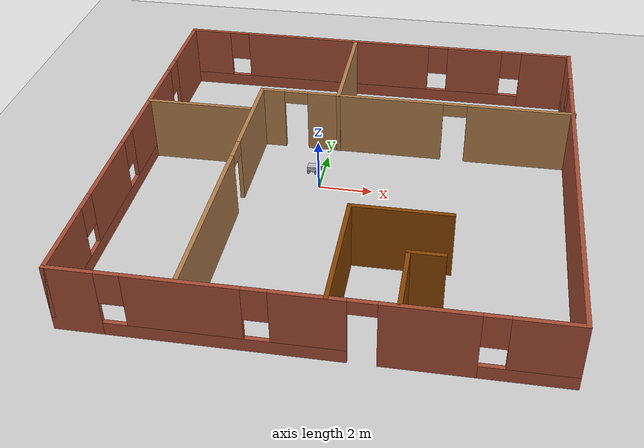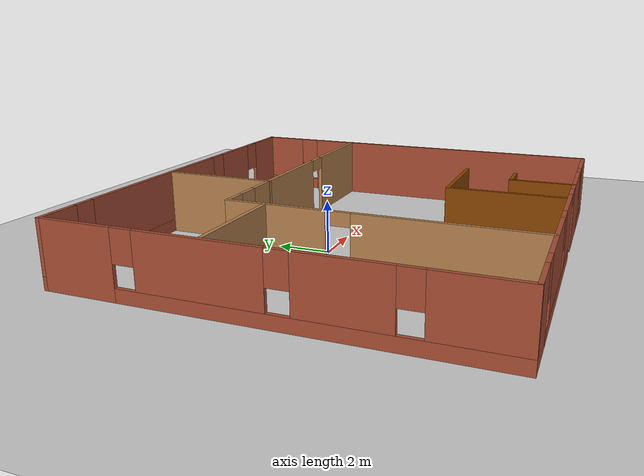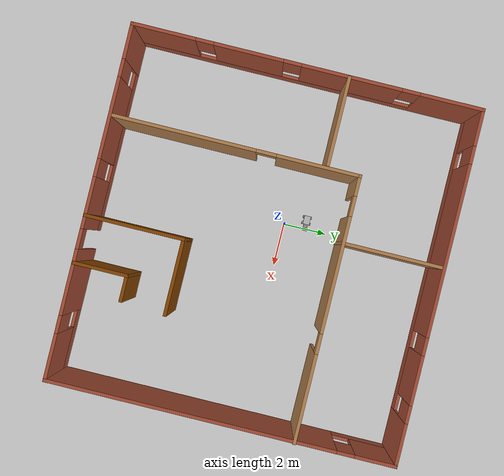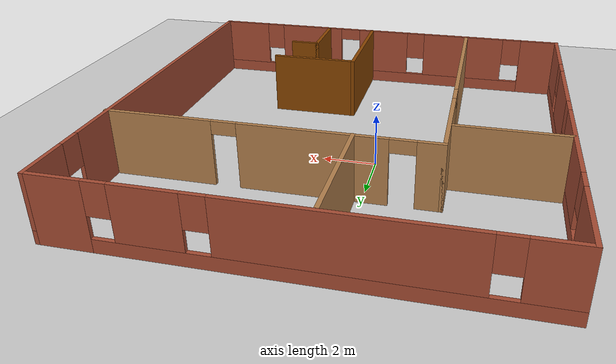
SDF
<sdf version="1.6">
 <world name="default">
  <model name="ground_plane">
   <static>1</static>
   <link name="link">
    <collision name="collision">
     <geometry><plane><normal>0 0 1</normal><size>100 100</size></plane></geometry>
     <surface><friction><ode><mu>100</mu><mu2>50</mu2></ode></friction></surface>
    </collision>
    <visual name="visual">
     <cast_shadows>0</cast_shadows>
     <geometry><plane><normal>0 0 1</normal><size>100 100</size></plane></geometry>
     <material>
      <script><uri>file://media/materials/scripts/gazebo.material</uri><name>Gazebo/Grey</name></script>
     </material>
    </visual>
   </link>
  </model>
  <model name="buillding">
   <pose>1.22192 -0.688168 0 0 -0 0</pose>
   <link name="Wall_11">
    <pose>2.02278 3.31581 0 0 -0 0</pose>
    <visual name="Wall_11_Visual_0">
     <pose>-5.5191 0 1.25 0 -0 0</pose>
     <geometry><box><size>0.961793 0.15 2.5</size></box></geometry>
     <material>
      <script><uri>file://media/materials/scripts/gazebo.material</uri><name>Gazebo/Wood</name></script>
      <ambient>1 1 1 1</ambient>
     </material>
     <meta><layer>0</layer></meta>
    </visual>
    <collision name="Wall_11_Collision_0">
     <geometry><box><size>0.961793 0.15 2.5</size></box></geometry>
     <pose>-5.5191 0 1.25 0 -0 0</pose>
    </collision>
    <visual name="Wall_11_Visual_1">
     <pose>-1.52765 0 1.25 0 -0 0</pose>
     <geometry><box><size>5.2211 0.15 2.5</size></box></geometry>
     <material>
      <script><uri>file://media/materials/scripts/gazebo.material</uri><name>Gazebo/Wood</name></script>
      <ambient>1 1 1 1</ambient>
     </material>
     <meta><layer>0</layer></meta>
    </visual>
    <collision name="Wall_11_Collision_1">
     <geometry><box><size>5.2211 0.15 2.5</size></box></geometry>
     <pose>-1.52765 0 1.25 0 -0 0</pose>
    </collision>
    <visual name="Wall_11_Visual_2">
     <pose>3.99145 0 1.25 0 -0 0</pose>
     <geometry><box><size>4.0171 0.15 2.5</size></box></geometry>
     <material>
      <script><uri>file://media/materials/scripts/gazebo.material</uri><name>Gazebo/Wood</name></script>
      <ambient>1 1 1 1</ambient>
     </material>
     <meta><layer>0</layer></meta>
    </visual>
    <collision name="Wall_11_Collision_2">
     <geometry><box><size>4.0171 0.15 2.5</size></box></geometry>
     <pose>3.99145 0 1.25 0 -0 0</pose>
    </collision>
    <visual name="Wall_11_Visual_3">
     <pose>-4.58821 0 2.25 0 -0 0</pose>
     <geometry><box><size>0.9 0.15 0.5</size></box></geometry>
     <material>
      <script><uri>file://media/materials/scripts/gazebo.material</uri><name>Gazebo/Wood</name></script>
      <ambient>1 1 1 1</ambient>
     </material>
     <meta><layer>0</layer></meta>
    </visual>
    <collision name="Wall_11_Collision_3">
     <geometry><box><size>0.9 0.15 0.5</size></box></geometry>
     <pose>-4.58821 0 2.25 0 -0 0</pose>
    </collision>
    <visual name="Wall_11_Visual_4">
     <pose>1.5329 0 2.25 0 -0 0</pose>
     <geometry><box><size>0.9 0.15 0.5</size></box></geometry>
     <material>
      <script><uri>file://media/materials/scripts/gazebo.material</uri><name>Gazebo/Wood</name></script>
      <ambient>1 1 1 1</ambient>
     </material>
     <meta><layer>0</layer></meta>
    </visual>
    <collision name="Wall_11_Collision_4">
     <geometry><box><size>0.9 0.15 0.5</size></box></geometry>
     <pose>1.5329 0 2.25 0 -0 0</pose>
    </collision>
   </link>
   <link name="Wall_13">
    <collision name="Wall_13_Collision">
     <geometry><box><size>4.5 0.15 2.5</size></box></geometry>
     <pose>0 0 1.25 0 -0 0</pose>
    </collision>
    <visual name="Wall_13_Visual">
     <pose>0 0 1.25 0 -0 0</pose>
     <geometry><box><size>4.5 0.15 2.5</size></box></geometry>
     <material>
      <script><uri>file://media/materials/scripts/gazebo.material</uri><name>Gazebo/Wood</name></script>
      <ambient>1 1 1 1</ambient>
     </material>
     <meta><layer>0</layer></meta>
    </visual>
    <pose>-0.912026 5.47212 0 0 -0 1.5708</pose>
   </link>
   <link name="Wall_15">
    <collision name="Wall_15_Collision">
     <geometry><box><size>4 0.15 2.5</size></box></geometry>
     <pose>0 0 1.25 0 -0 0</pose>
    </collision>
    <visual name="Wall_15_Visual">
     <pose>0 0 1.25 0 -0 0</pose>
     <geometry><box><size>4 0.15 2.5</size></box></geometry>
     <material>
      <script><uri>file://media/materials/scripts/gazebo.material</uri><name>Gazebo/Wood</name></script>
      <ambient>1 1 1 1</ambient>
     </material>
     <meta><layer>0</layer></meta>
    </visual>
    <pose>-5.9876 1.85479 0 0 -0 0</pose>
   </link>
   <link name="Wall_17">
    <collision name="Wall_17_Collision">
     <geometry><box><size>4.5 0.15 2.5</size></box></geometry>
     <pose>0 0 1.25 0 -0 0</pose>
    </collision>
    <visual name="Wall_17_Visual">
     <pose>0 0 1.25 0 -0 0</pose>
     <geometry><box><size>4.5 0.15 2.5</size></box></geometry>
     <material>
      <script><uri>file://media/materials/scripts/gazebo.material</uri><name>Gazebo/Grey</name></script>
      <ambient>0.533333 0.266667 0 1</ambient>
     </material>
     <meta><layer>0</layer></meta>
    </visual>
    <pose>0.565482 -5.60919 0 0 -0 1.5708</pose>
   </link>
   <link name="Wall_19">
    <collision name="Wall_19_Collision">
     <geometry><box><size>3.5 0.15 2.5</size></box></geometry>
     <pose>0 0 1.25 0 -0 0</pose>
    </collision>
    <visual name="Wall_19_Visual">
     <pose>0 0 1.25 0 -0 0</pose>
     <geometry><box><size>3.5 0.15 2.5</size></box></geometry>
     <material>
      <script><uri>file://media/materials/scripts/gazebo.material</uri><name>Gazebo/Grey</name></script>
      <ambient>0.533333 0.266667 0 1</ambient>
     </material>
     <meta><layer>0</layer></meta>
    </visual>
    <pose>2.24048 -3.43419 0 0 -0 0</pose>
   </link>
   <link name="Wall_21">
    <collision name="Wall_21_Collision">
     <geometry><box><size>2.5 0.15 2.5</size></box></geometry>
     <pose>0 0 1.25 0 -0 0</pose>
    </collision>
    <visual name="Wall_21_Visual">
     <pose>0 0 1.25 0 -0 0</pose>
     <geometry><box><size>2.5 0.15 2.5</size></box></geometry>
     <material>
      <script><uri>file://media/materials/scripts/gazebo.material</uri><name>Gazebo/Grey</name></script>
      <ambient>0.533333 0.266667 0 1</ambient>
     </material>
     <meta><layer>0</layer></meta>
    </visual>
    <pose>2.67621 -6.60919 0 0 -0 1.5708</pose>
   </link>
   <link name="Wall_22">
    <collision name="Wall_22_Collision">
     <geometry><box><size>1.25 0.15 2.5</size></box></geometry>
     <pose>0 0 1.25 0 -0 0</pose>
    </collision>
    <visual name="Wall_22_Visual">
     <pose>0 0 1.25 0 -0 0</pose>
     <geometry><box><size>1.25 0.15 2.5</size></box></geometry>
     <material>
      <script><uri>file://media/materials/scripts/gazebo.material</uri><name>Gazebo/Grey</name></script>
      <ambient>0.533333 0.266667 0 1</ambient>
     </material>
     <meta><layer>0</layer></meta>
    </visual>
    <pose>3.22621 -5.43419 0 0 -0 0</pose>
   </link>
   <link name="Wall_4">
    <pose>-7.94778 0 0 0 0 -1.5708</pose>
    <visual name="Wall_4_Visual_0">
     <pose>-6.43687 0 1.25 0 -0 0</pose>
     <geometry><box><size>2.87627 0.15 2.5</size></box></geometry>
     <material>
      <script><uri>file://media/materials/scripts/gazebo.material</uri><name>Gazebo/Bricks</name></script>
      <ambient>1 1 1 1</ambient>
     </material>
     <meta><layer>0</layer></meta>
    </visual>
    <collision name="Wall_4_Collision_0">
     <geometry><box><size>2.87627 0.15 2.5</size></box></geometry>
     <pose>-6.43687 0 1.25 0 -0 0</pose>
    </collision>
    <visual name="Wall_4_Visual_1">
     <pose>1.43813 0 0.25 0 -0 0</pose>
     <geometry><box><size>12.8737 0.15 0.5</size></box></geometry>
     <material>
      <script><uri>file://media/materials/scripts/gazebo.material</uri><name>Gazebo/Bricks</name></script>
      <ambient>1 1 1 1</ambient>
     </material>
     <meta><layer>0</layer></meta>
    </visual>
    <collision name="Wall_4_Collision_1">
     <geometry><box><size>12.8737 0.15 0.5</size></box></geometry>
     <pose>1.43813 0 0.25 0 -0 0</pose>
    </collision>
    <visual name="Wall_4_Visual_2">
     <pose>-1.96033 0 1.5 0 -0 0</pose>
     <geometry><box><size>4.47682 0.15 2</size></box></geometry>
     <material>
      <script><uri>file://media/materials/scripts/gazebo.material</uri><name>Gazebo/Bricks</name></script>
      <ambient>1 1 1 1</ambient>
     </material>
     <meta><layer>0</layer></meta>
    </visual>
    <collision name="Wall_4_Collision_2">
     <geometry><box><size>4.47682 0.15 2</size></box></geometry>
     <pose>-1.96033 0 1.5 0 -0 0</pose>
    </collision>
    <visual name="Wall_4_Visual_3">
     <pose>2.6305 0 1.5 0 -0 0</pose>
     <geometry><box><size>3.10484 0.15 2</size></box></geometry>
     <material>
      <script><uri>file://media/materials/scripts/gazebo.material</uri><name>Gazebo/Bricks</name></script>
      <ambient>1 1 1 1</ambient>
     </material>
     <meta><layer>0</layer></meta>
    </visual>
    <collision name="Wall_4_Collision_3">
     <geometry><box><size>3.10484 0.15 2</size></box></geometry>
     <pose>2.6305 0 1.5 0 -0 0</pose>
    </collision>
    <visual name="Wall_4_Visual_4">
     <pose>6.42896 0 1.5 0 -0 0</pose>
     <geometry><box><size>2.89208 0.15 2</size></box></geometry>
     <material>
      <script><uri>file://media/materials/scripts/gazebo.material</uri><name>Gazebo/Bricks</name></script>
      <ambient>1 1 1 1</ambient>
     </material>
     <meta><layer>0</layer></meta>
    </visual>
    <collision name="Wall_4_Collision_4">
     <geometry><box><size>2.89208 0.15 2</size></box></geometry>
     <pose>6.42896 0 1.5 0 -0 0</pose>
    </collision>
    <visual name="Wall_4_Visual_5">
     <pose>-4.59873 0 1.9 0 -0 0</pose>
     <geometry><box><size>0.8 0.15 1.2</size></box></geometry>
     <material>
      <script><uri>file://media/materials/scripts/gazebo.material</uri><name>Gazebo/Bricks</name></script>
      <ambient>1 1 1 1</ambient>
     </material>
     <meta><layer>0</layer></meta>
    </visual>
    <collision name="Wall_4_Collision_5">
     <geometry><box><size>0.8 0.15 1.2</size></box></geometry>
     <pose>-4.59873 0 1.9 0 -0 0</pose>
    </collision>
    <visual name="Wall_4_Visual_6">
     <pose>0.678082 0 1.9 0 -0 0</pose>
     <geometry><box><size>0.8 0.15 1.2</size></box></geometry>
     <material>
      <script><uri>file://media/materials/scripts/gazebo.material</uri><name>Gazebo/Bricks</name></script>
      <ambient>1 1 1 1</ambient>
     </material>
     <meta><layer>0</layer></meta>
    </visual>
    <collision name="Wall_4_Collision_6">
     <geometry><box><size>0.8 0.15 1.2</size></box></geometry>
     <pose>0.678082 0 1.9 0 -0 0</pose>
    </collision>
    <visual name="Wall_4_Visual_7">
     <pose>4.58293 0 1.9 0 -0 0</pose>
     <geometry><box><size>0.8 0.15 1.2</size></box></geometry>
     <material>
      <script><uri>file://media/materials/scripts/gazebo.material</uri><name>Gazebo/Bricks</name></script>
      <ambient>1 1 1 1</ambient>
     </material>
     <meta><layer>0</layer></meta>
    </visual>
    <collision name="Wall_4_Collision_7">
     <geometry><box><size>0.8 0.15 1.2</size></box></geometry>
     <pose>4.58293 0 1.9 0 -0 0</pose>
    </collision>
   </link>
   <link name="Wall_5">
    <pose>-0.022778 -7.8 0 0 -0 0</pose>
    <visual name="Wall_5_Visual_0">
     <pose>-7.1775 0 1.25 0 -0 0</pose>
     <geometry><box><size>1.64501 0.15 2.5</size></box></geometry>
     <material>
      <script><uri>file://media/materials/scripts/gazebo.material</uri><name>Gazebo/Bricks</name></script>
      <ambient>1 1 1 1</ambient>
     </material>
     <meta><layer>0</layer></meta>
    </visual>
    <collision name="Wall_5_Collision_0">
     <geometry><box><size>1.64501 0.15 2.5</size></box></geometry>
     <pose>-7.1775 0 1.25 0 -0 0</pose>
    </collision>
    <visual name="Wall_5_Visual_1">
     <pose>3.56828 0 1.25 0 -0 0</pose>
     <geometry><box><size>2.94931 0.15 2.5</size></box></geometry>
     <material>
      <script><uri>file://media/materials/scripts/gazebo.material</uri><name>Gazebo/Bricks</name></script>
      <ambient>1 1 1 1</ambient>
     </material>
     <meta><layer>0</layer></meta>
    </visual>
    <collision name="Wall_5_Collision_1">
     <geometry><box><size>2.94931 0.15 2.5</size></box></geometry>
     <pose>3.56828 0 1.25 0 -0 0</pose>
    </collision>
    <visual name="Wall_5_Visual_2">
     <pose>-2.58068 0 0.25 0 -0 0</pose>
     <geometry><box><size>7.54861 0.15 0.5</size></box></geometry>
     <material>
      <script><uri>file://media/materials/scripts/gazebo.material</uri><name>Gazebo/Bricks</name></script>
      <ambient>1 1 1 1</ambient>
     </material>
     <meta><layer>0</layer></meta>
    </visual>
    <collision name="Wall_5_Collision_2">
     <geometry><box><size>7.54861 0.15 0.5</size></box></geometry>
     <pose>-2.58068 0 0.25 0 -0 0</pose>
    </collision>
    <visual name="Wall_5_Visual_3">
     <pose>6.52147 0 0.25 0 -0 0</pose>
     <geometry><box><size>2.95707 0.15 0.5</size></box></geometry>
     <material>
      <script><uri>file://media/materials/scripts/gazebo.material</uri><name>Gazebo/Bricks</name></script>
      <ambient>1 1 1 1</ambient>
     </material>
     <meta><layer>0</layer></meta>
    </visual>
    <collision name="Wall_5_Collision_3">
     <geometry><box><size>2.95707 0.15 0.5</size></box></geometry>
     <pose>6.52147 0 0.25 0 -0 0</pose>
    </collision>
    <visual name="Wall_5_Visual_4">
     <pose>-3.73873 0 1.5 0 -0 0</pose>
     <geometry><box><size>3.63252 0.15 2</size></box></geometry>
     <material>
      <script><uri>file://media/materials/scripts/gazebo.material</uri><name>Gazebo/Bricks</name></script>
      <ambient>1 1 1 1</ambient>
     </material>
     <meta><layer>0</layer></meta>
    </visual>
    <collision name="Wall_5_Collision_4">
     <geometry><box><size>3.63252 0.15 2</size></box></geometry>
     <pose>-3.73873 0 1.5 0 -0 0</pose>
    </collision>
    <visual name="Wall_5_Visual_5">
     <pose>0.035579 0 1.5 0 -0 0</pose>
     <geometry><box><size>2.31609 0.15 2</size></box></geometry>
     <material>
      <script><uri>file://media/materials/scripts/gazebo.material</uri><name>Gazebo/Bricks</name></script>
      <ambient>1 1 1 1</ambient>
     </material>
     <meta><layer>0</layer></meta>
    </visual>
    <collision name="Wall_5_Collision_5">
     <geometry><box><size>2.31609 0.15 2</size></box></geometry>
     <pose>0.035579 0 1.5 0 -0 0</pose>
    </collision>
    <visual name="Wall_5_Visual_6">
     <pose>0.035579 0 1.5 0 -0 0</pose>
     <geometry><box><size>2.31609 0.15 2</size></box></geometry>
     <material>
      <script><uri>file://media/materials/scripts/gazebo.material</uri><name>Gazebo/Bricks</name></script>
      <ambient>1 1 1 1</ambient>
     </material>
     <meta><layer>0</layer></meta>
    </visual>
    <collision name="Wall_5_Collision_6">
     <geometry><box><size>2.31609 0.15 2</size></box></geometry>
     <pose>0.035579 0 1.5 0 -0 0</pose>
    </collision>
    <visual name="Wall_5_Visual_7">
     <pose>6.92147 0 1.5 0 -0 0</pose>
     <geometry><box><size>2.15707 0.15 2</size></box></geometry>
     <material>
      <script><uri>file://media/materials/scripts/gazebo.material</uri><name>Gazebo/Bricks</name></script>
      <ambient>1 1 1 1</ambient>
     </material>
     <meta><layer>0</layer></meta>
    </visual>
    <collision name="Wall_5_Collision_7">
     <geometry><box><size>2.15707 0.15 2</size></box></geometry>
     <pose>6.92147 0 1.5 0 -0 0</pose>
    </collision>
    <visual name="Wall_5_Visual_8">
     <pose>-5.95499 0 1.9 0 -0 0</pose>
     <geometry><box><size>0.8 0.15 1.2</size></box></geometry>
     <material>
      <script><uri>file://media/materials/scripts/gazebo.material</uri><name>Gazebo/Bricks</name></script>
      <ambient>1 1 1 1</ambient>
     </material>
     <meta><layer>0</layer></meta>
    </visual>
    <collision name="Wall_5_Collision_8">
     <geometry><box><size>0.8 0.15 1.2</size></box></geometry>
     <pose>-5.95499 0 1.9 0 -0 0</pose>
    </collision>
    <visual name="Wall_5_Visual_9">
     <pose>5.44293 0 1.9 0 -0 0</pose>
     <geometry><box><size>0.8 0.15 1.2</size></box></geometry>
     <material>
      <script><uri>file://media/materials/scripts/gazebo.material</uri><name>Gazebo/Bricks</name></script>
      <ambient>1 1 1 1</ambient>
     </material>
     <meta><layer>0</layer></meta>
    </visual>
    <collision name="Wall_5_Collision_9">
     <geometry><box><size>0.8 0.15 1.2</size></box></geometry>
     <pose>5.44293 0 1.9 0 -0 0</pose>
    </collision>
    <visual name="Wall_5_Visual_10">
     <pose>-1.52246 0 1.9 0 -0 0</pose>
     <geometry><box><size>0.8 0.15 1.2</size></box></geometry>
     <material>
      <script><uri>file://media/materials/scripts/gazebo.material</uri><name>Gazebo/Bricks</name></script>
      <ambient>1 1 1 1</ambient>
     </material>
     <meta><layer>0</layer></meta>
    </visual>
    <collision name="Wall_5_Collision_10">
     <geometry><box><size>0.8 0.15 1.2</size></box></geometry>
     <pose>-1.52246 0 1.9 0 -0 0</pose>
    </collision>
    <visual name="Wall_5_Visual_11">
     <pose>1.64362 0 2.25 0 -0 0</pose>
     <geometry><box><size>0.9 0.15 0.5</size></box></geometry>
     <material>
      <script><uri>file://media/materials/scripts/gazebo.material</uri><name>Gazebo/Bricks</name></script>
      <ambient>1 1 1 1</ambient>
     </material>
     <meta><layer>0</layer></meta>
    </visual>
    <collision name="Wall_5_Collision_11">
     <geometry><box><size>0.9 0.15 0.5</size></box></geometry>
     <pose>1.64362 0 2.25 0 -0 0</pose>
    </collision>
    <visual name="Wall_5_Visual_12">
     <pose>1.64362 0 2.25 0 -0 0</pose>
     <geometry><box><size>0.9 0.15 0.5</size></box></geometry>
     <material>
      <script><uri>file://media/materials/scripts/gazebo.material</uri><name>Gazebo/Bricks</name></script>
      <ambient>1 1 1 1</ambient>
     </material>
     <meta><layer>0</layer></meta>
    </visual>
    <collision name="Wall_5_Collision_12">
     <geometry><box><size>0.9 0.15 0.5</size></box></geometry>
     <pose>1.64362 0 2.25 0 -0 0</pose>
    </collision>
   </link>
   <link name="Wall_6">
    <pose>7.90222 0 0 0 -0 1.5708</pose>
    <visual name="Wall_6_Visual_0">
     <pose>-1.34563 0 1.25 0 -0 0</pose>
     <geometry><box><size>13.0587 0.15 2.5</size></box></geometry>
     <material>
      <script><uri>file://media/materials/scripts/gazebo.material</uri><name>Gazebo/Bricks</name></script>
      <ambient>1 1 1 1</ambient>
     </material>
     <meta><layer>0</layer></meta>
    </visual>
    <collision name="Wall_6_Collision_0">
     <geometry><box><size>13.0587 0.15 2.5</size></box></geometry>
     <pose>-1.34563 0 1.25 0 -0 0</pose>
    </collision>
    <visual name="Wall_6_Visual_1">
     <pose>6.52937 0 0.25 0 -0 0</pose>
     <geometry><box><size>2.69126 0.15 0.5</size></box></geometry>
     <material>
      <script><uri>file://media/materials/scripts/gazebo.material</uri><name>Gazebo/Bricks</name></script>
      <ambient>1 1 1 1</ambient>
     </material>
     <meta><layer>0</layer></meta>
    </visual>
    <collision name="Wall_6_Collision_1">
     <geometry><box><size>2.69126 0.15 0.5</size></box></geometry>
     <pose>6.52937 0 0.25 0 -0 0</pose>
    </collision>
    <visual name="Wall_6_Visual_2">
     <pose>6.92937 0 1.5 0 -0 0</pose>
     <geometry><box><size>1.89126 0.15 2</size></box></geometry>
     <material>
      <script><uri>file://media/materials/scripts/gazebo.material</uri><name>Gazebo/Bricks</name></script>
      <ambient>1 1 1 1</ambient>
     </material>
     <meta><layer>0</layer></meta>
    </visual>
    <collision name="Wall_6_Collision_2">
     <geometry><box><size>1.89126 0.15 2</size></box></geometry>
     <pose>6.92937 0 1.5 0 -0 0</pose>
    </collision>
    <visual name="Wall_6_Visual_3">
     <pose>5.58374 0 1.9 0 -0 0</pose>
     <geometry><box><size>0.8 0.15 1.2</size></box></geometry>
     <material>
      <script><uri>file://media/materials/scripts/gazebo.material</uri><name>Gazebo/Bricks</name></script>
      <ambient>1 1 1 1</ambient>
     </material>
     <meta><layer>0</layer></meta>
    </visual>
    <collision name="Wall_6_Collision_3">
     <geometry><box><size>0.8 0.15 1.2</size></box></geometry>
     <pose>5.58374 0 1.9 0 -0 0</pose>
    </collision>
   </link>
   <link name="Wall_7">
    <pose>-0.022778 7.8 0 0 -0 3.14159</pose>
    <visual name="Wall_7_Visual_0">
     <pose>-7.00941 0 1.25 0 -0 0</pose>
     <geometry><box><size>1.98118 0.15 2.5</size></box></geometry>
     <material>
      <script><uri>file://media/materials/scripts/gazebo.material</uri><name>Gazebo/Bricks</name></script>
      <ambient>1 1 1 1</ambient>
     </material>
     <meta><layer>0</layer></meta>
    </visual>
    <collision name="Wall_7_Collision_0">
     <geometry><box><size>1.98118 0.15 2.5</size></box></geometry>
     <pose>-7.00941 0 1.25 0 -0 0</pose>
    </collision>
    <visual name="Wall_7_Visual_1">
     <pose>0.990588 0 0.25 0 -0 0</pose>
     <geometry><box><size>14.0188 0.15 0.5</size></box></geometry>
     <material>
      <script><uri>file://media/materials/scripts/gazebo.material</uri><name>Gazebo/Bricks</name></script>
      <ambient>1 1 1 1</ambient>
     </material>
     <meta><layer>0</layer></meta>
    </visual>
    <collision name="Wall_7_Collision_1">
     <geometry><box><size>14.0188 0.15 0.5</size></box></geometry>
     <pose>0.990588 0 0.25 0 -0 0</pose>
    </collision>
    <visual name="Wall_7_Visual_2">
     <pose>-4.10614 0 1.5 0 -0 0</pose>
     <geometry><box><size>2.22537 0.15 2</size></box></geometry>
     <material>
      <script><uri>file://media/materials/scripts/gazebo.material</uri><name>Gazebo/Bricks</name></script>
      <ambient>1 1 1 1</ambient>
     </material>
     <meta><layer>0</layer></meta>
    </visual>
    <collision name="Wall_7_Collision_2">
     <geometry><box><size>2.22537 0.15 2</size></box></geometry>
     <pose>-4.10614 0 1.5 0 -0 0</pose>
    </collision>
    <visual name="Wall_7_Visual_3">
     <pose>1.66318 0 1.5 0 -0 0</pose>
     <geometry><box><size>7.71326 0.15 2</size></box></geometry>
     <material>
      <script><uri>file://media/materials/scripts/gazebo.material</uri><name>Gazebo/Bricks</name></script>
      <ambient>1 1 1 1</ambient>
     </material>
     <meta><layer>0</layer></meta>
    </visual>
    <collision name="Wall_7_Collision_3">
     <geometry><box><size>7.71326 0.15 2</size></box></geometry>
     <pose>1.66318 0 1.5 0 -0 0</pose>
    </collision>
    <visual name="Wall_7_Visual_4">
     <pose>7.15991 0 1.5 0 -0 0</pose>
     <geometry><box><size>1.68019 0.15 2</size></box></geometry>
     <material>
      <script><uri>file://media/materials/scripts/gazebo.material</uri><name>Gazebo/Bricks</name></script>
      <ambient>1 1 1 1</ambient>
     </material>
     <meta><layer>0</layer></meta>
    </visual>
    <collision name="Wall_7_Collision_4">
     <geometry><box><size>1.68019 0.15 2</size></box></geometry>
     <pose>7.15991 0 1.5 0 -0 0</pose>
    </collision>
    <visual name="Wall_7_Visual_5">
     <pose>-5.61882 0 1.9 0 -0 0</pose>
     <geometry><box><size>0.8 0.15 1.2</size></box></geometry>
     <material>
      <script><uri>file://media/materials/scripts/gazebo.material</uri><name>Gazebo/Bricks</name></script>
      <ambient>1 1 1 1</ambient>
     </material>
     <meta><layer>0</layer></meta>
    </visual>
    <collision name="Wall_7_Collision_5">
     <geometry><box><size>0.8 0.15 1.2</size></box></geometry>
     <pose>-5.61882 0 1.9 0 -0 0</pose>
    </collision>
    <visual name="Wall_7_Visual_6">
     <pose>-2.59345 0 1.9 0 -0 0</pose>
     <geometry><box><size>0.8 0.15 1.2</size></box></geometry>
     <material>
      <script><uri>file://media/materials/scripts/gazebo.material</uri><name>Gazebo/Bricks</name></script>
      <ambient>1 1 1 1</ambient>
     </material>
     <meta><layer>0</layer></meta>
    </visual>
    <collision name="Wall_7_Collision_6">
     <geometry><box><size>0.8 0.15 1.2</size></box></geometry>
     <pose>-2.59345 0 1.9 0 -0 0</pose>
    </collision>
    <visual name="Wall_7_Visual_7">
     <pose>5.91981 0 1.9 0 -0 0</pose>
     <geometry><box><size>0.8 0.15 1.2</size></box></geometry>
     <material>
      <script><uri>file://media/materials/scripts/gazebo.material</uri><name>Gazebo/Bricks</name></script>
      <ambient>1 1 1 1</ambient>
     </material>
     <meta><layer>0</layer></meta>
    </visual>
    <collision name="Wall_7_Collision_7">
     <geometry><box><size>0.8 0.15 1.2</size></box></geometry>
     <pose>5.91981 0 1.9 0 -0 0</pose>
    </collision>
   </link>
   <link name="Wall_9">
    <pose>-3.90222 -2.23419 0 0 -0 1.5708</pose>
    <visual name="Wall_9_Visual_0">
     <pose>-2.34739 0 1.25 0 -0 0</pose>
     <geometry><box><size>6.55522 0.15 2.5</size></box></geometry>
     <material>
      <script><uri>file://media/materials/scripts/gazebo.material</uri><name>Gazebo/Wood</name></script>
      <ambient>1 1 1 1</ambient>
     </material>
     <meta><layer>0</layer></meta>
    </visual>
    <collision name="Wall_9_Collision_0">
     <geometry><box><size>6.55522 0.15 2.5</size></box></geometry>
     <pose>-2.34739 0 1.25 0 -0 0</pose>
    </collision>
    <visual name="Wall_9_Visual_1">
     <pose>3.72761 0 1.25 0 -0 0</pose>
     <geometry><box><size>3.79478 0.15 2.5</size></box></geometry>
     <material>
      <script><uri>file://media/materials/scripts/gazebo.material</uri><name>Gazebo/Wood</name></script>
      <ambient>1 1 1 1</ambient>
     </material>
     <meta><layer>0</layer></meta>
    </visual>
    <collision name="Wall_9_Collision_1">
     <geometry><box><size>3.79478 0.15 2.5</size></box></geometry>
     <pose>3.72761 0 1.25 0 -0 0</pose>
    </collision>
    <visual name="Wall_9_Visual_2">
     <pose>1.38022 0 2.25 0 -0 0</pose>
     <geometry><box><size>0.9 0.15 0.5</size></box></geometry>
     <material>
      <script><uri>file://media/materials/scripts/gazebo.material</uri><name>Gazebo/Wood</name></script>
      <ambient>1 1 1 1</ambient>
     </material>
     <meta><layer>0</layer></meta>
    </visual>
    <collision name="Wall_9_Collision_2">
     <geometry><box><size>0.9 0.15 0.5</size></box></geometry>
     <pose>1.38022 0 2.25 0 -0 0</pose>
    </collision>
   </link>
   <static>1</static>
  </model>
  <model name="robot">
   <link name="chassis">
    <pose>0 0 0.16 0 -0 0</pose>
    <inertial>
     <mass>1</mass>
     <inertia><ixx>1</ixx><ixy>0</ixy><ixz>0</ixz><iyy>1</iyy><iyz>0</iyz><izz>1</izz></inertia>
    </inertial>
    <visual name="visual">
     <geometry><box><size>0.4 0.3 0.2</size></box></geometry>
     <material>
      <shader type="pixel"><normal_map>__default__</normal_map></shader>
      <emissive>0 0 0 1</emissive>
     </material>
    </visual>
    <collision name="collision">
     <geometry><box><size>0.4 0.3 0.2</size></box></geometry>
     <surface>
      <friction>
       <ode><mu>1</mu><mu2>1</mu2><fdir1>0 0 0</fdir1><slip1>0</slip1><slip2>0</slip2></ode>
       <torsional>
        <coefficient>1</coefficient>
        <patch_radius>0</patch_radius>
        <surface_radius>0</surface_radius>
        <use_patch_radius>1</use_patch_radius>
        <ode><slip>0</slip></ode>
       </torsional>
      </friction>
      <bounce><restitution_coefficient>0</restitution_coefficient><threshold>1e+06</threshold></bounce>
      <contact>
       <collide_without_contact>0</collide_without_contact>
       <collide_without_contact_bitmask>1</collide_without_contact_bitmask>
       <collide_bitmask>1</collide_bitmask>
       <ode>
        <soft_cfm>0</soft_cfm>
        <soft_erp>0.2</soft_erp>
        <kp>1e+13</kp>
        <kd>1</kd>
        <max_vel>0.01</max_vel>
        <min_depth>0</min_depth>
       </ode>
       <bullet>
        <split_impulse>1</split_impulse>
        <split_impulse_penetration_threshold>-0.01</split_impulse_penetration_threshold>
        <soft_cfm>0</soft_cfm>
        <soft_erp>0.2</soft_erp>
        <kp>1e+13</kp>
        <kd>1</kd>
       </bullet>
      </contact>
     </surface>
    </collision>
   </link>
   <link name="link_0_clone">
    <pose>-0.14 -0.180006 0.06 1.5707 -0 0</pose>
    <inertial>
     <mass>1</mass>
     <inertia><ixx>0.145833</ixx><ixy>0</ixy><ixz>0</ixz><iyy>0.145833</iyy><iyz>0</iyz><izz>0.125</izz></inertia>
    </inertial>
    <visual name="visual">
     <geometry><cylinder><radius>0.06</radius><length>0.06</length></cylinder></geometry>
     <material>
      <lighting>1</lighting>
      <script><uri>file://media/materials/scripts/gazebo.material</uri><name>Gazebo/Grey</name></script>
      <shader type="pixel"><normal_map>__default__</normal_map></shader>
      <ambient>0.3 0.3 0.3 1</ambient>
      <diffuse>0.7 0.7 0.7 1</diffuse>
      <specular>0.01 0.01 0.01 1</specular>
      <emissive>0 0 0 1</emissive>
     </material>
    </visual>
    <collision name="collision">
     <geometry><cylinder><radius>0.06</radius><length>0.06</length></cylinder></geometry>
     <surface>
      <friction>
       <ode><mu>1</mu><mu2>1</mu2><fdir1>0 0 0</fdir1><slip1>0</slip1><slip2>0</slip2></ode>
       <torsional>
        <coefficient>1</coefficient>
        <patch_radius>0</patch_radius>
        <surface_radius>0</surface_radius>
        <use_patch_radius>1</use_patch_radius>
        <ode><slip>0</slip></ode>
       </torsional>
      </friction>
      <bounce><restitution_coefficient>0</restitution_coefficient><threshold>1e+06</threshold></bounce>
      <contact>
       <collide_without_contact>0</collide_without_contact>
       <collide_without_contact_bitmask>1</collide_without_contact_bitmask>
       <collide_bitmask>1</collide_bitmask>
       <ode>
        <soft_cfm>0</soft_cfm>
        <soft_erp>0.2</soft_erp>
        <kp>1e+13</kp>
        <kd>1</kd>
        <max_vel>0.01</max_vel>
        <min_depth>0</min_depth>
       </ode>
       <bullet>
        <split_impulse>1</split_impulse>
        <split_impulse_penetration_threshold>-0.01</split_impulse_penetration_threshold>
        <soft_cfm>0</soft_cfm>
        <soft_erp>0.2</soft_erp>
        <kp>1e+13</kp>
        <kd>1</kd>
       </bullet>
      </contact>
     </surface>
    </collision>
   </link>
   <link name="link_0_clone_0">
    <pose>0.14 -0.180006 0.06 1.5707 -0 0</pose>
    <inertial>
     <mass>1</mass>
     <inertia><ixx>0.145833</ixx><ixy>0</ixy><ixz>0</ixz><iyy>0.145833</iyy><iyz>0</iyz><izz>0.125</izz></inertia>
    </inertial>
    <visual name="visual">
     <geometry><cylinder><radius>0.06</radius><length>0.06</length></cylinder></geometry>
     <material>
      <lighting>1</lighting>
      <script><uri>file://media/materials/scripts/gazebo.material</uri><name>Gazebo/Grey</name></script>
      <shader type="pixel"><normal_map>__default__</normal_map></shader>
      <ambient>0.3 0.3 0.3 1</ambient>
      <diffuse>0.7 0.7 0.7 1</diffuse>
      <specular>0.01 0.01 0.01 1</specular>
      <emissive>0 0 0 1</emissive>
     </material>
    </visual>
    <collision name="collision">
     <geometry><cylinder><radius>0.06</radius><length>0.06</length></cylinder></geometry>
     <surface>
      <friction>
       <ode><mu>1</mu><mu2>1</mu2><fdir1>0 0 0</fdir1><slip1>0</slip1><slip2>0</slip2></ode>
       <torsional>
        <coefficient>1</coefficient>
        <patch_radius>0</patch_radius>
        <surface_radius>0</surface_radius>
        <use_patch_radius>1</use_patch_radius>
        <ode><slip>0</slip></ode>
       </torsional>
      </friction>
      <bounce><restitution_coefficient>0</restitution_coefficient><threshold>1e+06</threshold></bounce>
      <contact>
       <collide_without_contact>0</collide_without_contact>
       <collide_without_contact_bitmask>1</collide_without_contact_bitmask>
       <collide_bitmask>1</collide_bitmask>
       <ode>
        <soft_cfm>0</soft_cfm>
        <soft_erp>0.2</soft_erp>
        <kp>1e+13</kp>
        <kd>1</kd>
        <max_vel>0.01</max_vel>
        <min_depth>0</min_depth>
       </ode>
       <bullet>
        <split_impulse>1</split_impulse>
        <split_impulse_penetration_threshold>-0.01</split_impulse_penetration_threshold>
        <soft_cfm>0</soft_cfm>
        <soft_erp>0.2</soft_erp>
        <kp>1e+13</kp>
        <kd>1</kd>
       </bullet>
      </contact>
     </surface>
    </collision>
   </link>
   <link name="link_0_clone_1">
    <pose>-0.14 0.180006 0.06 1.5707 -0 0</pose>
    <inertial>
     <mass>1</mass>
     <inertia><ixx>0.145833</ixx><ixy>0</ixy><ixz>0</ixz><iyy>0.145833</iyy><iyz>0</iyz><izz>0.125</izz></inertia>
    </inertial>
    <visual name="visual">
     <geometry><cylinder><radius>0.06</radius><length>0.06</length></cylinder></geometry>
     <material>
      <lighting>1</lighting>
      <script><uri>file://media/materials/scripts/gazebo.material</uri><name>Gazebo/Grey</name></script>
      <shader type="pixel"><normal_map>__default__</normal_map></shader>
      <ambient>0.3 0.3 0.3 1</ambient>
      <diffuse>0.7 0.7 0.7 1</diffuse>
      <specular>0.01 0.01 0.01 1</specular>
      <emissive>0 0 0 1</emissive>
     </material>
    </visual>
    <collision name="collision">
     <geometry><cylinder><radius>0.06</radius><length>0.06</length></cylinder></geometry>
     <surface>
      <friction>
       <ode><mu>1</mu><mu2>1</mu2><fdir1>0 0 0</fdir1><slip1>0</slip1><slip2>0</slip2></ode>
       <torsional>
        <coefficient>1</coefficient>
        <patch_radius>0</patch_radius>
        <surface_radius>0</surface_radius>
        <use_patch_radius>1</use_patch_radius>
        <ode><slip>0</slip></ode>
       </torsional>
      </friction>
      <bounce><restitution_coefficient>0</restitution_coefficient><threshold>1e+06</threshold></bounce>
      <contact>
       <collide_without_contact>0</collide_without_contact>
       <collide_without_contact_bitmask>1</collide_without_contact_bitmask>
       <collide_bitmask>1</collide_bitmask>
       <ode>
        <soft_cfm>0</soft_cfm>
        <soft_erp>0.2</soft_erp>
        <kp>1e+13</kp>
        <kd>1</kd>
        <max_vel>0.01</max_vel>
        <min_depth>0</min_depth>
       </ode>
       <bullet>
        <split_impulse>1</split_impulse>
        <split_impulse_penetration_threshold>-0.01</split_impulse_penetration_threshold>
        <soft_cfm>0</soft_cfm>
        <soft_erp>0.2</soft_erp>
        <kp>1e+13</kp>
        <kd>1</kd>
       </bullet>
      </contact>
     </surface>
    </collision>
   </link>
   <link name="link_0_clone_2">
    <pose>0.14 0.180006 0.06 1.5707 -0 0</pose>
    <inertial>
     <mass>1</mass>
     <inertia><ixx>0.145833</ixx><ixy>0</ixy><ixz>0</ixz><iyy>0.145833</iyy><iyz>0</iyz><izz>0.125</izz></inertia>
    </inertial>
    <visual name="visual">
     <geometry><cylinder><radius>0.06</radius><length>0.06</length></cylinder></geometry>
     <material>
      <lighting>1</lighting>
      <script><uri>file://media/materials/scripts/gazebo.material</uri><name>Gazebo/Grey</name></script>
      <shader type="pixel"><normal_map>__default__</normal_map></shader>
      <ambient>0.3 0.3 0.3 1</ambient>
      <diffuse>0.7 0.7 0.7 1</diffuse>
      <specular>0.01 0.01 0.01 1</specular>
      <emissive>0 0 0 1</emissive>
     </material>
    </visual>
    <collision name="collision">
     <geometry><cylinder><radius>0.06</radius><length>0.06</length></cylinder></geometry>
     <surface>
      <friction>
       <ode><mu>1</mu><mu2>1</mu2><fdir1>0 0 0</fdir1><slip1>0</slip1><slip2>0</slip2></ode>
       <torsional>
        <coefficient>1</coefficient>
        <patch_radius>0</patch_radius>
        <surface_radius>0</surface_radius>
        <use_patch_radius>1</use_patch_radius>
        <ode><slip>0</slip></ode>
       </torsional>
      </friction>
      <bounce><restitution_coefficient>0</restitution_coefficient><threshold>1e+06</threshold></bounce>
      <contact>
       <collide_without_contact>0</collide_without_contact>
       <collide_without_contact_bitmask>1</collide_without_contact_bitmask>
       <collide_bitmask>1</collide_bitmask>
       <ode>
        <soft_cfm>0</soft_cfm>
        <soft_erp>0.2</soft_erp>
        <kp>1e+13</kp>
        <kd>1</kd>
        <max_vel>0.01</max_vel>
        <min_depth>0</min_depth>
       </ode>
       <bullet>
        <split_impulse>1</split_impulse>
        <split_impulse_penetration_threshold>-0.01</split_impulse_penetration_threshold>
        <soft_cfm>0</soft_cfm>
        <soft_erp>0.2</soft_erp>
        <kp>1e+13</kp>
        <kd>1</kd>
       </bullet>
      </contact>
     </surface>
    </collision>
   </link>
   <link name="link_1_clone">
    <pose>0.35 0 0.21 0 -0 0</pose>
    <inertial>
     <mass>1</mass>
     <inertia>
      <ixx>0.166667</ixx>
      <ixy>0</ixy>
      <ixz>0</ixz>
      <iyy>0.166667</iyy>
      <iyz>0</iyz>
      <izz>0.166667</izz>
     </inertia>
    </inertial>
    <visual name="visual">
     <geometry><box><size>0.3 0.2 0.1</size></box></geometry>
     <material>
      <lighting>1</lighting>
      <script><uri>file://media/materials/scripts/gazebo.material</uri><name>Gazebo/Grey</name></script>
      <shader type="pixel"><normal_map>__default__</normal_map></shader>
      <ambient>0.3 0.3 0.3 1</ambient>
      <diffuse>0.7 0.7 0.7 1</diffuse>
      <specular>0.01 0.01 0.01 1</specular>
      <emissive>0 0 0 1</emissive>
     </material>
    </visual>
    <collision name="collision">
     <geometry><box><size>0.3 0.2 0.1</size></box></geometry>
     <surface>
      <friction>
       <ode><mu>1</mu><mu2>1</mu2><fdir1>0 0 0</fdir1><slip1>0</slip1><slip2>0</slip2></ode>
       <torsional>
        <coefficient>1</coefficient>
        <patch_radius>0</patch_radius>
        <surface_radius>0</surface_radius>
        <use_patch_radius>1</use_patch_radius>
        <ode><slip>0</slip></ode>
       </torsional>
      </friction>
      <bounce><restitution_coefficient>0</restitution_coefficient><threshold>1e+06</threshold></bounce>
      <contact>
       <collide_without_contact>0</collide_without_contact>
       <collide_without_contact_bitmask>1</collide_without_contact_bitmask>
       <collide_bitmask>1</collide_bitmask>
       <ode>
        <soft_cfm>0</soft_cfm>
        <soft_erp>0.2</soft_erp>
        <kp>1e+13</kp>
        <kd>1</kd>
        <max_vel>0.01</max_vel>
        <min_depth>0</min_depth>
       </ode>
       <bullet>
        <split_impulse>1</split_impulse>
        <split_impulse_penetration_threshold>-0.01</split_impulse_penetration_threshold>
        <soft_cfm>0</soft_cfm>
        <soft_erp>0.2</soft_erp>
        <kp>1e+13</kp>
        <kd>1</kd>
       </bullet>
      </contact>
     </surface>
    </collision>
   </link>
   <link name="link_2_clone">
    <pose>0.42 0 0.08 0 -0 0</pose>
    <inertial>
     <mass>1</mass>
     <inertia><ixx>0.1</ixx><ixy>0</ixy><ixz>0</ixz><iyy>0.1</iyy><iyz>0</iyz><izz>0.1</izz></inertia>
    </inertial>
    <visual name="visual">
     <geometry><sphere><radius>0.08</radius></sphere></geometry>
     <material>
      <lighting>1</lighting>
      <script><uri>file://media/materials/scripts/gazebo.material</uri><name>Gazebo/Grey</name></script>
      <shader type="pixel"><normal_map>__default__</normal_map></shader>
      <ambient>0.3 0.3 0.3 1</ambient>
      <diffuse>0.7 0.7 0.7 1</diffuse>
      <specular>0.01 0.01 0.01 1</specular>
      <emissive>0 0 0 1</emissive>
     </material>
    </visual>
    <collision name="collision">
     <geometry><sphere><radius>0.08</radius></sphere></geometry>
     <surface>
      <friction>
       <ode><mu>1</mu><mu2>1</mu2><fdir1>0 0 0</fdir1><slip1>0</slip1><slip2>0</slip2></ode>
       <torsional>
        <coefficient>1</coefficient>
        <patch_radius>0</patch_radius>
        <surface_radius>0</surface_radius>
        <use_patch_radius>1</use_patch_radius>
        <ode><slip>0</slip></ode>
       </torsional>
      </friction>
      <bounce><restitution_coefficient>0</restitution_coefficient><threshold>1e+06</threshold></bounce>
      <contact>
       <collide_without_contact>0</collide_without_contact>
       <collide_without_contact_bitmask>1</collide_without_contact_bitmask>
       <collide_bitmask>1</collide_bitmask>
       <ode>
        <soft_cfm>0</soft_cfm>
        <soft_erp>0.2</soft_erp>
        <kp>1e+13</kp>
        <kd>1</kd>
        <max_vel>0.01</max_vel>
        <min_depth>0</min_depth>
       </ode>
       <bullet>
        <split_impulse>1</split_impulse>
        <split_impulse_penetration_threshold>-0.01</split_impulse_penetration_threshold>
        <soft_cfm>0</soft_cfm>
        <soft_erp>0.2</soft_erp>
        <kp>1e+13</kp>
        <kd>1</kd>
       </bullet>
      </contact>
     </surface>
    </collision>
   </link>
   <model name="depth_camera">
    <link name="link">
     <pose>0 0 0.05 0 -0 0</pose>
     <inertial>
      <mass>0.1</mass>
      <inertia>
       <ixx>0.000166667</ixx>
       <iyy>0.000166667</iyy>
       <izz>0.000166667</izz>
       <ixy>0</ixy>
       <ixz>0</ixz>
       <iyz>0</iyz>
      </inertia>
     </inertial>
     <collision name="collision"><geometry><box><size>0.1 0.1 0.1</size></box></geometry></collision>
     <visual name="visual"><geometry><box><size>0.1 0.1 0.1</size></box></geometry></visual>
     <sensor name="camera" type="depth">
      <camera name="__default__">
       <horizontal_fov>1.047</horizontal_fov>
       <image><width>320</width><height>240</height></image>
       <clip><near>0.1</near><far>100</far></clip>
      </camera>
      <always_on>1</always_on>
      <update_rate>30</update_rate>
      <visualize>1</visualize>
     </sensor>
    </link>
    <pose>0.31707 -0.004098 0.243439 0 -0 0</pose>
   </model>
   <joint name="chassis_JOINT_0" type="revolute">
    <parent>chassis</parent>
    <child>link_0_clone_0</child>
    <axis>
     <xyz>0 0 -1</xyz>
     <use_parent_model_frame>0</use_parent_model_frame>
     <limit>
      <lower>-1.79769e+308</lower>
      <upper>1.79769e+308</upper>
      <effort>-1</effort>
      <velocity>-1</velocity>
     </limit>
     <dynamics>
      <spring_reference>0</spring_reference>
      <spring_stiffness>0</spring_stiffness>
      <damping>0</damping>
     </dynamics>
    </axis>
    <physics>
     <ode><limit><cfm>0</cfm><erp>0.2</erp></limit><suspension><cfm>0</cfm><erp>0.2</erp></suspension></ode>
    </physics>
   </joint>
   <joint name="chassis_JOINT_1" type="revolute">
    <parent>chassis</parent>
    <child>link_0_clone</child>
    <axis>
     <xyz>0 0 -1</xyz>
     <use_parent_model_frame>0</use_parent_model_frame>
     <limit>
      <lower>-1.79769e+308</lower>
      <upper>1.79769e+308</upper>
      <effort>-1</effort>
      <velocity>-1</velocity>
     </limit>
     <dynamics>
      <spring_reference>0</spring_reference>
      <spring_stiffness>0</spring_stiffness>
      <damping>0</damping>
     </dynamics>
    </axis>
    <physics>
     <ode><limit><cfm>0</cfm><erp>0.2</erp></limit><suspension><cfm>0</cfm><erp>0.2</erp></suspension></ode>
    </physics>
   </joint>
   <joint name="chassis_JOINT_2" type="revolute">
    <parent>chassis</parent>
    <child>link_0_clone_2</child>
    <axis>
     <xyz>0 0 1</xyz>
     <use_parent_model_frame>0</use_parent_model_frame>
     <limit>
      <lower>-1.79769e+308</lower>
      <upper>1.79769e+308</upper>
      <effort>-1</effort>
      <velocity>-1</velocity>
     </limit>
     <dynamics>
      <spring_reference>0</spring_reference>
      <spring_stiffness>0</spring_stiffness>
      <damping>0</damping>
     </dynamics>
    </axis>
    <physics>
     <ode><limit><cfm>0</cfm><erp>0.2</erp></limit><suspension><cfm>0</cfm><erp>0.2</erp></suspension></ode>
    </physics>
   </joint>
   <joint name="chassis_JOINT_3" type="revolute">
    <parent>chassis</parent>
    <child>link_0_clone_1</child>
    <axis>
     <xyz>0 0 1</xyz>
     <use_parent_model_frame>0</use_parent_model_frame>
     <limit>
      <lower>-1.79769e+308</lower>
      <upper>1.79769e+308</upper>
      <effort>-1</effort>
      <velocity>-1</velocity>
     </limit>
     <dynamics>
      <spring_reference>0</spring_reference>
      <spring_stiffness>0</spring_stiffness>
      <damping>0</damping>
     </dynamics>
    </axis>
    <physics>
     <ode><limit><cfm>0</cfm><erp>0.2</erp></limit><suspension><cfm>0</cfm><erp>0.2</erp></suspension></ode>
    </physics>
   </joint>
   <joint name="chassis_JOINT_4" type="fixed">
    <parent>chassis</parent>
    <child>link_1_clone</child>
    <physics>
     <ode><limit><cfm>0</cfm><erp>0.2</erp></limit><suspension><cfm>0</cfm><erp>0.2</erp></suspension></ode>
    </physics>
   </joint>
   <joint name="link_JOINT_6" type="fixed">
    <parent>depth_camera::link</parent>
    <child>link_1_clone</child>
    <physics>
     <ode><limit><cfm>0</cfm><erp>0.2</erp></limit><suspension><cfm>0</cfm><erp>0.2</erp></suspension></ode>
    </physics>
   </joint>
   <joint name="link_1_clone_JOINT_5" type="ball">
    <parent>link_1_clone</parent>
    <child>link_2_clone</child>
    <physics>
     <ode><limit><cfm>0</cfm><erp>0.2</erp></limit><suspension><cfm>0</cfm><erp>0.2</erp></suspension></ode>
    </physics>
   </joint>
   <static>1</static>
   <pose>-0.427572 0.997056 0 0 -0 0</pose>
  </model>
 </world>
</sdf>
